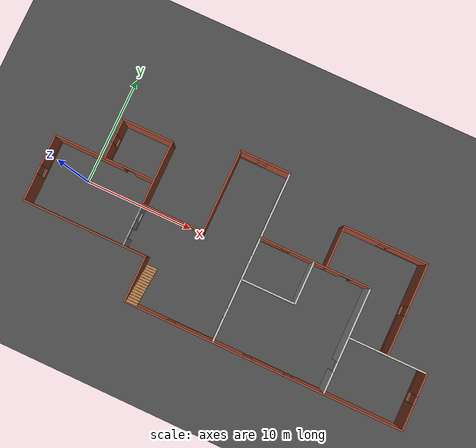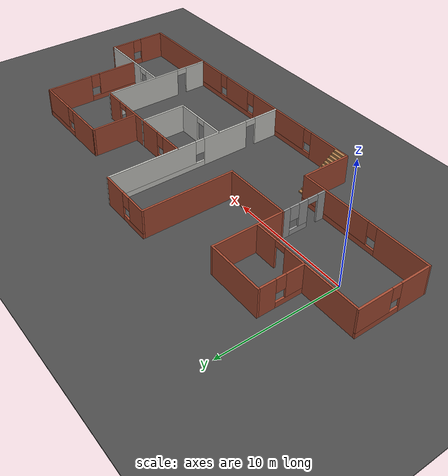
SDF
<sdf version="1.6">
 <world name="default">
  <light name="sun" type="directional">
   <pose>0 0 10 0 -0 0</pose>
   <diffuse>0.8 0.8 0.8 1</diffuse>
   <specular>0.2 0.2 0.2 1</specular>
   <attenuation>
    <range>1000</range>
    <constant>0.9</constant>
    <linear>0.01</linear>
    <quadratic>0.001</quadratic>
   </attenuation>
   <direction>-0.5 0.1 -0.9</direction>
  </light>
  <model name="ground_plane">
   <static>1</static>
   <link name="link">
    <collision name="collision">
     <geometry><plane><normal>0 0 1</normal><size>100 100</size></plane></geometry>
     <surface>
      <contact><collide_bitmask>65535</collide_bitmask></contact>
      <friction><ode><mu>100</mu><mu2>50</mu2></ode></friction>
     </surface>
    </collision>
    <visual name="visual">
     <cast_shadows>0</cast_shadows>
     <geometry><plane><normal>0 0 1</normal><size>100 100</size></plane></geometry>
     <material>
      <script><uri>file://media/materials/scripts/gazebo.material</uri><name>Gazebo/Grey</name></script>
     </material>
    </visual>
   </link>
  </model>
  <model name="asphalt_plane">
   <static>1</static>
   <link name="link">
    <collision name="collision"><geometry><box><size>200 200 0.1</size></box></geometry></collision>
    <visual name="visual">
     <cast_shadows>0</cast_shadows>
     <geometry><box><size>200 200 0.1</size></box></geometry>
     <material>
      <script>
       <uri>model://asphalt_plane/materials/scripts</uri>
       <uri>model://asphalt_plane/materials/textures</uri>
       <name>vrc/asphalt</name>
      </script>
     </material>
    </visual>
   </link>
  </model>
  <physics name="default_physics" default="0" type="ode">
   <ode>
    <solver>
     <type>quick</type>
     <iters>10</iters>
     <sor>1.3</sor>
     <use_dynamic_moi_rescaling>0</use_dynamic_moi_rescaling>
    </solver>
    <constraints>
     <cfm>0</cfm>
     <erp>0.2</erp>
     <contact_max_correcting_vel>100</contact_max_correcting_vel>
     <contact_surface_layer>0.001</contact_surface_layer>
    </constraints>
   </ode>
   <max_step_size>0.002</max_step_size>
   <real_time_factor>1</real_time_factor>
   <real_time_update_rate>500</real_time_update_rate>
  </physics>
  <gravity>0 0 -9.8066</gravity>
  <magnetic_field>6e-06 2.3e-05 -4.2e-05</magnetic_field>
  <atmosphere type="adiabatic"/>
  <scene><ambient>0.4 0.4 0.4 1</ambient><background>0.7 0.7 0.7 1</background><shadows>1</shadows></scene>
  <audio><device>default</device></audio>
  <spherical_coordinates>
   <surface_model>EARTH_WGS84</surface_model>
   <latitude_deg>0</latitude_deg>
   <longitude_deg>0</longitude_deg>
   <elevation>0</elevation>
   <heading_deg>0</heading_deg>
  </spherical_coordinates>
  <model name="Complex_House_2">
   <pose>14.725 -0.11 0 0 -0 0</pose>
   <link name="Stairs_1">
    <visual name="Stairs_1_Visual_0">
     <pose>-6.35818 -4.38972 0.083333 0 -0 0</pose>
     <geometry><box><size>1 0.233333 0.166667</size></box></geometry>
     <material>
      <script><uri>file://media/materials/scripts/gazebo.material</uri><name>Gazebo/Wood</name></script>
      <ambient>1 1 1 1</ambient>
     </material>
     <meta><layer>0</layer></meta>
    </visual>
    <collision name="Stairs_1_Collision_0">
     <geometry><box><size>1 0.233333 0.166667</size></box></geometry>
     <pose>-6.35818 -4.38972 0.083333 0 -0 0</pose>
    </collision>
    <visual name="Stairs_1_Visual_1">
     <pose>-6.35818 -4.62305 0.25 0 -0 0</pose>
     <geometry><box><size>1 0.233333 0.166667</size></box></geometry>
     <material>
      <script><uri>file://media/materials/scripts/gazebo.material</uri><name>Gazebo/Wood</name></script>
      <ambient>1 1 1 1</ambient>
     </material>
     <meta><layer>0</layer></meta>
    </visual>
    <collision name="Stairs_1_Collision_1">
     <geometry><box><size>1 0.233333 0.166667</size></box></geometry>
     <pose>-6.35818 -4.62305 0.25 0 -0 0</pose>
    </collision>
    <visual name="Stairs_1_Visual_2">
     <pose>-6.35818 -4.85638 0.416667 0 -0 0</pose>
     <geometry><box><size>1 0.233333 0.166667</size></box></geometry>
     <material>
      <script><uri>file://media/materials/scripts/gazebo.material</uri><name>Gazebo/Wood</name></script>
      <ambient>1 1 1 1</ambient>
     </material>
     <meta><layer>0</layer></meta>
    </visual>
    <collision name="Stairs_1_Collision_2">
     <geometry><box><size>1 0.233333 0.166667</size></box></geometry>
     <pose>-6.35818 -4.85638 0.416667 0 -0 0</pose>
    </collision>
    <visual name="Stairs_1_Visual_3">
     <pose>-6.35818 -5.08972 0.583333 0 -0 0</pose>
     <geometry><box><size>1 0.233333 0.166667</size></box></geometry>
     <material>
      <script><uri>file://media/materials/scripts/gazebo.material</uri><name>Gazebo/Wood</name></script>
      <ambient>1 1 1 1</ambient>
     </material>
     <meta><layer>0</layer></meta>
    </visual>
    <collision name="Stairs_1_Collision_3">
     <geometry><box><size>1 0.233333 0.166667</size></box></geometry>
     <pose>-6.35818 -5.08972 0.583333 0 -0 0</pose>
    </collision>
    <visual name="Stairs_1_Visual_4">
     <pose>-6.35818 -5.32305 0.75 0 -0 0</pose>
     <geometry><box><size>1 0.233333 0.166667</size></box></geometry>
     <material>
      <script><uri>file://media/materials/scripts/gazebo.material</uri><name>Gazebo/Wood</name></script>
      <ambient>1 1 1 1</ambient>
     </material>
     <meta><layer>0</layer></meta>
    </visual>
    <collision name="Stairs_1_Collision_4">
     <geometry><box><size>1 0.233333 0.166667</size></box></geometry>
     <pose>-6.35818 -5.32305 0.75 0 -0 0</pose>
    </collision>
    <visual name="Stairs_1_Visual_5">
     <pose>-6.35818 -5.55638 0.916667 0 -0 0</pose>
     <geometry><box><size>1 0.233333 0.166667</size></box></geometry>
     <material>
      <script><uri>file://media/materials/scripts/gazebo.material</uri><name>Gazebo/Wood</name></script>
      <ambient>1 1 1 1</ambient>
     </material>
     <meta><layer>0</layer></meta>
    </visual>
    <collision name="Stairs_1_Collision_5">
     <geometry><box><size>1 0.233333 0.166667</size></box></geometry>
     <pose>-6.35818 -5.55638 0.916667 0 -0 0</pose>
    </collision>
    <visual name="Stairs_1_Visual_6">
     <pose>-6.35818 -5.78972 1.08333 0 -0 0</pose>
     <geometry><box><size>1 0.233333 0.166667</size></box></geometry>
     <material>
      <script><uri>file://media/materials/scripts/gazebo.material</uri><name>Gazebo/Wood</name></script>
      <ambient>1 1 1 1</ambient>
     </material>
     <meta><layer>0</layer></meta>
    </visual>
    <collision name="Stairs_1_Collision_6">
     <geometry><box><size>1 0.233333 0.166667</size></box></geometry>
     <pose>-6.35818 -5.78972 1.08333 0 -0 0</pose>
    </collision>
    <visual name="Stairs_1_Visual_7">
     <pose>-6.35818 -6.02305 1.25 0 -0 0</pose>
     <geometry><box><size>1 0.233333 0.166667</size></box></geometry>
     <material>
      <script><uri>file://media/materials/scripts/gazebo.material</uri><name>Gazebo/Wood</name></script>
      <ambient>1 1 1 1</ambient>
     </material>
     <meta><layer>0</layer></meta>
    </visual>
    <collision name="Stairs_1_Collision_7">
     <geometry><box><size>1 0.233333 0.166667</size></box></geometry>
     <pose>-6.35818 -6.02305 1.25 0 -0 0</pose>
    </collision>
    <visual name="Stairs_1_Visual_8">
     <pose>-6.35818 -6.25638 1.41667 0 -0 0</pose>
     <geometry><box><size>1 0.233333 0.166667</size></box></geometry>
     <material>
      <script><uri>file://media/materials/scripts/gazebo.material</uri><name>Gazebo/Wood</name></script>
      <ambient>1 1 1 1</ambient>
     </material>
     <meta><layer>0</layer></meta>
    </visual>
    <collision name="Stairs_1_Collision_8">
     <geometry><box><size>1 0.233333 0.166667</size></box></geometry>
     <pose>-6.35818 -6.25638 1.41667 0 -0 0</pose>
    </collision>
    <visual name="Stairs_1_Visual_9">
     <pose>-6.35818 -6.48972 1.58333 0 -0 0</pose>
     <geometry><box><size>1 0.233333 0.166667</size></box></geometry>
     <material>
      <script><uri>file://media/materials/scripts/gazebo.material</uri><name>Gazebo/Wood</name></script>
      <ambient>1 1 1 1</ambient>
     </material>
     <meta><layer>0</layer></meta>
    </visual>
    <collision name="Stairs_1_Collision_9">
     <geometry><box><size>1 0.233333 0.166667</size></box></geometry>
     <pose>-6.35818 -6.48972 1.58333 0 -0 0</pose>
    </collision>
    <visual name="Stairs_1_Visual_10">
     <pose>-6.35818 -6.72305 1.75 0 -0 0</pose>
     <geometry><box><size>1 0.233333 0.166667</size></box></geometry>
     <material>
      <script><uri>file://media/materials/scripts/gazebo.material</uri><name>Gazebo/Wood</name></script>
      <ambient>1 1 1 1</ambient>
     </material>
     <meta><layer>0</layer></meta>
    </visual>
    <collision name="Stairs_1_Collision_10">
     <geometry><box><size>1 0.233333 0.166667</size></box></geometry>
     <pose>-6.35818 -6.72305 1.75 0 -0 0</pose>
    </collision>
    <visual name="Stairs_1_Visual_11">
     <pose>-6.35818 -6.95638 1.91667 0 -0 0</pose>
     <geometry><box><size>1 0.233333 0.166667</size></box></geometry>
     <material>
      <script><uri>file://media/materials/scripts/gazebo.material</uri><name>Gazebo/Wood</name></script>
      <ambient>1 1 1 1</ambient>
     </material>
     <meta><layer>0</layer></meta>
    </visual>
    <collision name="Stairs_1_Collision_11">
     <geometry><box><size>1 0.233333 0.166667</size></box></geometry>
     <pose>-6.35818 -6.95638 1.91667 0 -0 0</pose>
    </collision>
    <visual name="Stairs_1_Visual_12">
     <pose>-6.35818 -7.18972 2.08333 0 -0 0</pose>
     <geometry><box><size>1 0.233333 0.166667</size></box></geometry>
     <material>
      <script><uri>file://media/materials/scripts/gazebo.material</uri><name>Gazebo/Wood</name></script>
      <ambient>1 1 1 1</ambient>
     </material>
     <meta><layer>0</layer></meta>
    </visual>
    <collision name="Stairs_1_Collision_12">
     <geometry><box><size>1 0.233333 0.166667</size></box></geometry>
     <pose>-6.35818 -7.18972 2.08333 0 -0 0</pose>
    </collision>
    <visual name="Stairs_1_Visual_13">
     <pose>-6.35818 -7.42305 2.25 0 -0 0</pose>
     <geometry><box><size>1 0.233333 0.166667</size></box></geometry>
     <material>
      <script><uri>file://media/materials/scripts/gazebo.material</uri><name>Gazebo/Wood</name></script>
      <ambient>1 1 1 1</ambient>
     </material>
     <meta><layer>0</layer></meta>
    </visual>
    <collision name="Stairs_1_Collision_13">
     <geometry><box><size>1 0.233333 0.166667</size></box></geometry>
     <pose>-6.35818 -7.42305 2.25 0 -0 0</pose>
    </collision>
    <visual name="Stairs_1_Visual_14">
     <pose>-6.35818 -7.65638 2.41667 0 -0 0</pose>
     <geometry><box><size>1 0.233333 0.166667</size></box></geometry>
     <material>
      <script><uri>file://media/materials/scripts/gazebo.material</uri><name>Gazebo/Wood</name></script>
      <ambient>1 1 1 1</ambient>
     </material>
     <meta><layer>0</layer></meta>
    </visual>
    <collision name="Stairs_1_Collision_14">
     <geometry><box><size>1 0.233333 0.166667</size></box></geometry>
     <pose>-6.35818 -7.65638 2.41667 0 -0 0</pose>
    </collision>
   </link>
   <link name="Wall_1">
    <pose>-18.325 -0.65 0 0 -0 1.5708</pose>
    <visual name="Wall_1_Visual_0">
     <pose>-1.84207 0 1.25 0 -0 0</pose>
     <geometry><box><size>2.56586 0.15 2.5</size></box></geometry>
     <material>
      <script><uri>file://media/materials/scripts/gazebo.material</uri><name>Gazebo/Bricks</name></script>
      <ambient>1 1 1 1</ambient>
     </material>
     <meta><layer>0</layer></meta>
    </visual>
    <collision name="Wall_1_Collision_0">
     <geometry><box><size>2.56586 0.15 2.5</size></box></geometry>
     <pose>-1.84207 0 1.25 0 -0 0</pose>
    </collision>
    <visual name="Wall_1_Visual_1">
     <pose>1.28293 0 0.25 0 -0 0</pose>
     <geometry><box><size>3.68414 0.15 0.5</size></box></geometry>
     <material>
      <script><uri>file://media/materials/scripts/gazebo.material</uri><name>Gazebo/Bricks</name></script>
      <ambient>1 1 1 1</ambient>
     </material>
     <meta><layer>0</layer></meta>
    </visual>
    <collision name="Wall_1_Collision_1">
     <geometry><box><size>3.68414 0.15 0.5</size></box></geometry>
     <pose>1.28293 0 0.25 0 -0 0</pose>
    </collision>
    <visual name="Wall_1_Visual_2">
     <pose>1.68293 0 1.5 0 -0 0</pose>
     <geometry><box><size>2.88414 0.15 2</size></box></geometry>
     <material>
      <script><uri>file://media/materials/scripts/gazebo.material</uri><name>Gazebo/Bricks</name></script>
      <ambient>1 1 1 1</ambient>
     </material>
     <meta><layer>0</layer></meta>
    </visual>
    <collision name="Wall_1_Collision_2">
     <geometry><box><size>2.88414 0.15 2</size></box></geometry>
     <pose>1.68293 0 1.5 0 -0 0</pose>
    </collision>
    <visual name="Wall_1_Visual_3">
     <pose>-0.159136 0 1.9 0 -0 0</pose>
     <geometry><box><size>0.8 0.15 1.2</size></box></geometry>
     <material>
      <script><uri>file://media/materials/scripts/gazebo.material</uri><name>Gazebo/Bricks</name></script>
      <ambient>1 1 1 1</ambient>
     </material>
     <meta><layer>0</layer></meta>
    </visual>
    <collision name="Wall_1_Collision_3">
     <geometry><box><size>0.8 0.15 1.2</size></box></geometry>
     <pose>-0.159136 0 1.9 0 -0 0</pose>
    </collision>
   </link>
   <link name="Wall_10">
    <collision name="Wall_10_Collision">
     <geometry><box><size>7.75 0.15 2.5</size></box></geometry>
     <pose>0 0 1.25 0 -0 0</pose>
    </collision>
    <visual name="Wall_10_Visual">
     <pose>0 0 1.25 0 -0 0</pose>
     <geometry><box><size>7.75 0.15 2.5</size></box></geometry>
     <material>
      <script><uri>file://media/materials/scripts/gazebo.material</uri><name>Gazebo/Bricks</name></script>
      <ambient>1 1 1 1</ambient>
     </material>
     <meta><layer>0</layer></meta>
    </visual>
    <pose>-3.475 4 0 0 -0 -1.5708</pose>
   </link>
   <link name="Wall_11">
    <collision name="Wall_11_Collision">
     <geometry><box><size>5.75 0.15 2.5</size></box></geometry>
     <pose>0 0 1.25 0 -0 0</pose>
    </collision>
    <visual name="Wall_11_Visual">
     <pose>0 0 1.25 0 -0 0</pose>
     <geometry><box><size>5.75 0.15 2.5</size></box></geometry>
     <material>
      <script><uri>file://media/materials/scripts/gazebo.material</uri><name>Gazebo/Bricks</name></script>
      <ambient>1 1 1 1</ambient>
     </material>
     <meta><layer>0</layer></meta>
    </visual>
    <pose>-6.275 0.2 0 0 -0 3.14159</pose>
   </link>
   <link name="Wall_13">
    <pose>6.175 -7.8 0 0 -0 0</pose>
    <visual name="Wall_13_Visual_0">
     <pose>-3.68341 0 1.25 0 -0 0</pose>
     <geometry><box><size>2.88319 0.15 2.5</size></box></geometry>
     <material>
      <script><uri>file://media/materials/scripts/gazebo.material</uri><name>Gazebo/Bricks</name></script>
      <ambient>1 1 1 1</ambient>
     </material>
     <meta><layer>0</layer></meta>
    </visual>
    <collision name="Wall_13_Collision_0">
     <geometry><box><size>2.88319 0.15 2.5</size></box></geometry>
     <pose>-3.68341 0 1.25 0 -0 0</pose>
    </collision>
    <visual name="Wall_13_Visual_1">
     <pose>1.44159 0 0.25 0 -0 0</pose>
     <geometry><box><size>7.36681 0.15 0.5</size></box></geometry>
     <material>
      <script><uri>file://media/materials/scripts/gazebo.material</uri><name>Gazebo/Bricks</name></script>
      <ambient>1 1 1 1</ambient>
     </material>
     <meta><layer>0</layer></meta>
    </visual>
    <collision name="Wall_13_Collision_1">
     <geometry><box><size>7.36681 0.15 0.5</size></box></geometry>
     <pose>1.44159 0 0.25 0 -0 0</pose>
    </collision>
    <visual name="Wall_13_Visual_2">
     <pose>0.016109 0 1.5 0 -0 0</pose>
     <geometry><box><size>2.91584 0.15 2</size></box></geometry>
     <material>
      <script><uri>file://media/materials/scripts/gazebo.material</uri><name>Gazebo/Bricks</name></script>
      <ambient>1 1 1 1</ambient>
     </material>
     <meta><layer>0</layer></meta>
    </visual>
    <collision name="Wall_13_Collision_2">
     <geometry><box><size>2.91584 0.15 2</size></box></geometry>
     <pose>0.016109 0 1.5 0 -0 0</pose>
    </collision>
    <visual name="Wall_13_Visual_3">
     <pose>3.69951 0 1.5 0 -0 0</pose>
     <geometry><box><size>2.85097 0.15 2</size></box></geometry>
     <material>
      <script><uri>file://media/materials/scripts/gazebo.material</uri><name>Gazebo/Bricks</name></script>
      <ambient>1 1 1 1</ambient>
     </material>
     <meta><layer>0</layer></meta>
    </visual>
    <collision name="Wall_13_Collision_3">
     <geometry><box><size>2.85097 0.15 2</size></box></geometry>
     <pose>3.69951 0 1.5 0 -0 0</pose>
    </collision>
    <visual name="Wall_13_Visual_4">
     <pose>-1.84181 0 1.9 0 -0 0</pose>
     <geometry><box><size>0.8 0.15 1.2</size></box></geometry>
     <material>
      <script><uri>file://media/materials/scripts/gazebo.material</uri><name>Gazebo/Bricks</name></script>
      <ambient>1 1 1 1</ambient>
     </material>
     <meta><layer>0</layer></meta>
    </visual>
    <collision name="Wall_13_Collision_4">
     <geometry><box><size>0.8 0.15 1.2</size></box></geometry>
     <pose>-1.84181 0 1.9 0 -0 0</pose>
    </collision>
    <visual name="Wall_13_Visual_5">
     <pose>1.87403 0 1.9 0 -0 0</pose>
     <geometry><box><size>0.8 0.15 1.2</size></box></geometry>
     <material>
      <script><uri>file://media/materials/scripts/gazebo.material</uri><name>Gazebo/Bricks</name></script>
      <ambient>1 1 1 1</ambient>
     </material>
     <meta><layer>0</layer></meta>
    </visual>
    <collision name="Wall_13_Collision_5">
     <geometry><box><size>0.8 0.15 1.2</size></box></geometry>
     <pose>1.87403 0 1.9 0 -0 0</pose>
    </collision>
   </link>
   <link name="Wall_14">
    <pose>11.225 -3 0 0 -0 1.5708</pose>
    <visual name="Wall_14_Visual_0">
     <pose>-3.86039 0 1.25 0 -0 0</pose>
     <geometry><box><size>2.02921 0.15 2.5</size></box></geometry>
     <material>
      <script><uri>file://media/materials/scripts/gazebo.material</uri><name>Gazebo/CeilingTiled</name></script>
      <ambient>1 1 1 1</ambient>
     </material>
     <meta><layer>0</layer></meta>
    </visual>
    <collision name="Wall_14_Collision_0">
     <geometry><box><size>2.02921 0.15 2.5</size></box></geometry>
     <pose>-3.86039 0 1.25 0 -0 0</pose>
    </collision>
    <visual name="Wall_14_Visual_1">
     <pose>1.46461 0 1.25 0 -0 0</pose>
     <geometry><box><size>6.82079 0.15 2.5</size></box></geometry>
     <material>
      <script><uri>file://media/materials/scripts/gazebo.material</uri><name>Gazebo/CeilingTiled</name></script>
      <ambient>1 1 1 1</ambient>
     </material>
     <meta><layer>0</layer></meta>
    </visual>
    <collision name="Wall_14_Collision_1">
     <geometry><box><size>6.82079 0.15 2.5</size></box></geometry>
     <pose>1.46461 0 1.25 0 -0 0</pose>
    </collision>
    <visual name="Wall_14_Visual_2">
     <pose>-2.39579 0 2.25 0 -0 0</pose>
     <geometry><box><size>0.9 0.15 0.5</size></box></geometry>
     <material>
      <script><uri>file://media/materials/scripts/gazebo.material</uri><name>Gazebo/CeilingTiled</name></script>
      <ambient>1 1 1 1</ambient>
     </material>
     <meta><layer>0</layer></meta>
    </visual>
    <collision name="Wall_14_Collision_2">
     <geometry><box><size>0.9 0.15 0.5</size></box></geometry>
     <pose>-2.39579 0 2.25 0 -0 0</pose>
    </collision>
   </link>
   <link name="Wall_17">
    <pose>6.175 1.8 0 0 -0 3.14159</pose>
    <visual name="Wall_17_Visual_0">
     <pose>-4.24504 0 1.25 0 -0 0</pose>
     <geometry><box><size>1.75992 0.15 2.5</size></box></geometry>
     <material>
      <script><uri>file://media/materials/scripts/gazebo.material</uri><name>Gazebo/Bricks</name></script>
      <ambient>1 1 1 1</ambient>
     </material>
     <meta><layer>0</layer></meta>
    </visual>
    <collision name="Wall_17_Collision_0">
     <geometry><box><size>1.75992 0.15 2.5</size></box></geometry>
     <pose>-4.24504 0 1.25 0 -0 0</pose>
    </collision>
    <visual name="Wall_17_Visual_1">
     <pose>-0.10652 0 1.25 0 -0 0</pose>
     <geometry><box><size>4.71712 0.15 2.5</size></box></geometry>
     <material>
      <script><uri>file://media/materials/scripts/gazebo.material</uri><name>Gazebo/Bricks</name></script>
      <ambient>1 1 1 1</ambient>
     </material>
     <meta><layer>0</layer></meta>
    </visual>
    <collision name="Wall_17_Collision_1">
     <geometry><box><size>4.71712 0.15 2.5</size></box></geometry>
     <pose>-0.10652 0 1.25 0 -0 0</pose>
    </collision>
    <visual name="Wall_17_Visual_2">
     <pose>3.68852 0 0.25 0 -0 0</pose>
     <geometry><box><size>2.87296 0.15 0.5</size></box></geometry>
     <material>
      <script><uri>file://media/materials/scripts/gazebo.material</uri><name>Gazebo/Bricks</name></script>
      <ambient>1 1 1 1</ambient>
     </material>
     <meta><layer>0</layer></meta>
    </visual>
    <collision name="Wall_17_Collision_2">
     <geometry><box><size>2.87296 0.15 0.5</size></box></geometry>
     <pose>3.68852 0 0.25 0 -0 0</pose>
    </collision>
    <visual name="Wall_17_Visual_3">
     <pose>4.08852 0 1.5 0 -0 0</pose>
     <geometry><box><size>2.07296 0.15 2</size></box></geometry>
     <material>
      <script><uri>file://media/materials/scripts/gazebo.material</uri><name>Gazebo/Bricks</name></script>
      <ambient>1 1 1 1</ambient>
     </material>
     <meta><layer>0</layer></meta>
    </visual>
    <collision name="Wall_17_Collision_3">
     <geometry><box><size>2.07296 0.15 2</size></box></geometry>
     <pose>4.08852 0 1.5 0 -0 0</pose>
    </collision>
    <visual name="Wall_17_Visual_4">
     <pose>2.65204 0 1.9 0 -0 0</pose>
     <geometry><box><size>0.8 0.15 1.2</size></box></geometry>
     <material>
      <script><uri>file://media/materials/scripts/gazebo.material</uri><name>Gazebo/Bricks</name></script>
      <ambient>1 1 1 1</ambient>
     </material>
     <meta><layer>0</layer></meta>
    </visual>
    <collision name="Wall_17_Collision_4">
     <geometry><box><size>0.8 0.15 1.2</size></box></geometry>
     <pose>2.65204 0 1.9 0 -0 0</pose>
    </collision>
    <visual name="Wall_17_Visual_5">
     <pose>-2.91508 0 2.25 0 -0 0</pose>
     <geometry><box><size>0.9 0.15 0.5</size></box></geometry>
     <material>
      <script><uri>file://media/materials/scripts/gazebo.material</uri><name>Gazebo/Bricks</name></script>
      <ambient>1 1 1 1</ambient>
     </material>
     <meta><layer>0</layer></meta>
    </visual>
    <collision name="Wall_17_Collision_5">
     <geometry><box><size>0.9 0.15 0.5</size></box></geometry>
     <pose>-2.91508 0 2.25 0 -0 0</pose>
    </collision>
   </link>
   <link name="Wall_2">
    <pose>-13.775 2.4 0 0 -0 0</pose>
    <visual name="Wall_2_Visual_0">
     <pose>-1.37417 0 1.25 0 -0 0</pose>
     <geometry><box><size>6.50165 0.15 2.5</size></box></geometry>
     <material>
      <script><uri>file://media/materials/scripts/gazebo.material</uri><name>Gazebo/Bricks</name></script>
      <ambient>1 1 1 1</ambient>
     </material>
     <meta><layer>0</layer></meta>
    </visual>
    <collision name="Wall_2_Collision_0">
     <geometry><box><size>6.50165 0.15 2.5</size></box></geometry>
     <pose>-1.37417 0 1.25 0 -0 0</pose>
    </collision>
    <visual name="Wall_2_Visual_1">
     <pose>3.70083 0 1.25 0 -0 0</pose>
     <geometry><box><size>1.84835 0.15 2.5</size></box></geometry>
     <material>
      <script><uri>file://media/materials/scripts/gazebo.material</uri><name>Gazebo/Bricks</name></script>
      <ambient>1 1 1 1</ambient>
     </material>
     <meta><layer>0</layer></meta>
    </visual>
    <collision name="Wall_2_Collision_1">
     <geometry><box><size>1.84835 0.15 2.5</size></box></geometry>
     <pose>3.70083 0 1.25 0 -0 0</pose>
    </collision>
    <visual name="Wall_2_Visual_2">
     <pose>2.32665 0 2.25 0 -0 0</pose>
     <geometry><box><size>0.9 0.15 0.5</size></box></geometry>
     <material>
      <script><uri>file://media/materials/scripts/gazebo.material</uri><name>Gazebo/Bricks</name></script>
      <ambient>1 1 1 1</ambient>
     </material>
     <meta><layer>0</layer></meta>
    </visual>
    <collision name="Wall_2_Collision_2">
     <geometry><box><size>0.9 0.15 0.5</size></box></geometry>
     <pose>2.32665 0 2.25 0 -0 0</pose>
    </collision>
   </link>
   <link name="Wall_20">
    <pose>-9.075 -1.725 0 0 -0 -1.5708</pose>
    <visual name="Wall_20_Visual_0">
     <pose>-1.64114 0 1.25 0 -0 0</pose>
     <geometry><box><size>0.717716 0.15 2.5</size></box></geometry>
     <material>
      <script><uri>file://media/materials/scripts/gazebo.material</uri><name>Gazebo/Grey</name></script>
      <ambient>1 1 1 1</ambient>
     </material>
     <meta><layer>0</layer></meta>
    </visual>
    <collision name="Wall_20_Collision_0">
     <geometry><box><size>0.717716 0.15 2.5</size></box></geometry>
     <pose>-1.64114 0 1.25 0 -0 0</pose>
    </collision>
    <visual name="Wall_20_Visual_1">
     <pose>1.60473 0 1.25 0 -0 0</pose>
     <geometry><box><size>0.790546 0.15 2.5</size></box></geometry>
     <material>
      <script><uri>file://media/materials/scripts/gazebo.material</uri><name>Gazebo/Grey</name></script>
      <ambient>1 1 1 1</ambient>
     </material>
     <meta><layer>0</layer></meta>
    </visual>
    <collision name="Wall_20_Collision_1">
     <geometry><box><size>0.790546 0.15 2.5</size></box></geometry>
     <pose>1.60473 0 1.25 0 -0 0</pose>
    </collision>
    <visual name="Wall_20_Visual_2">
     <pose>-0.486415 0 0.25 0 -0 0</pose>
     <geometry><box><size>1.59174 0.15 0.5</size></box></geometry>
     <material>
      <script><uri>file://media/materials/scripts/gazebo.material</uri><name>Gazebo/Grey</name></script>
      <ambient>1 1 1 1</ambient>
     </material>
     <meta><layer>0</layer></meta>
    </visual>
    <collision name="Wall_20_Collision_2">
     <geometry><box><size>1.59174 0.15 0.5</size></box></geometry>
     <pose>-0.486415 0 0.25 0 -0 0</pose>
    </collision>
    <visual name="Wall_20_Visual_3">
     <pose>-0.086415 0 1.5 0 -0 0</pose>
     <geometry><box><size>0.791738 0.15 2</size></box></geometry>
     <material>
      <script><uri>file://media/materials/scripts/gazebo.material</uri><name>Gazebo/Grey</name></script>
      <ambient>1 1 1 1</ambient>
     </material>
     <meta><layer>0</layer></meta>
    </visual>
    <collision name="Wall_20_Collision_3">
     <geometry><box><size>0.791738 0.15 2</size></box></geometry>
     <pose>-0.086415 0 1.5 0 -0 0</pose>
    </collision>
    <visual name="Wall_20_Visual_4">
     <pose>-0.882284 0 1.9 0 -0 0</pose>
     <geometry><box><size>0.8 0.15 1.2</size></box></geometry>
     <material>
      <script><uri>file://media/materials/scripts/gazebo.material</uri><name>Gazebo/Grey</name></script>
      <ambient>1 1 1 1</ambient>
     </material>
     <meta><layer>0</layer></meta>
    </visual>
    <collision name="Wall_20_Collision_4">
     <geometry><box><size>0.8 0.15 1.2</size></box></geometry>
     <pose>-0.882284 0 1.9 0 -0 0</pose>
    </collision>
    <visual name="Wall_20_Visual_5">
     <pose>0.759454 0 2.25 0 -0 0</pose>
     <geometry><box><size>0.9 0.15 0.5</size></box></geometry>
     <material>
      <script><uri>file://media/materials/scripts/gazebo.material</uri><name>Gazebo/Grey</name></script>
      <ambient>1 1 1 1</ambient>
     </material>
     <meta><layer>0</layer></meta>
    </visual>
    <collision name="Wall_20_Collision_5">
     <geometry><box><size>0.9 0.15 0.5</size></box></geometry>
     <pose>0.759454 0 2.25 0 -0 0</pose>
    </collision>
   </link>
   <link name="Wall_22">
    <collision name="Wall_22_Collision">
     <geometry><box><size>6 0.15 2.5</size></box></geometry>
     <pose>0 0 1.25 0 -0 0</pose>
    </collision>
    <visual name="Wall_22_Visual">
     <pose>0 0 1.25 0 -0 0</pose>
     <geometry><box><size>6 0.15 2.5</size></box></geometry>
     <material>
      <script><uri>file://media/materials/scripts/gazebo.material</uri><name>Gazebo/Bricks</name></script>
      <ambient>1 1 1 1</ambient>
     </material>
     <meta><layer>0</layer></meta>
    </visual>
    <pose>-9.075 3.125 0 0 -0 1.5708</pose>
   </link>
   <link name="Wall_23">
    <collision name="Wall_23_Collision">
     <geometry><box><size>4.75 0.15 2.5</size></box></geometry>
     <pose>0 0 1.25 0 -0 0</pose>
    </collision>
    <visual name="Wall_23_Visual">
     <pose>0 0 1.25 0 -0 0</pose>
     <geometry><box><size>4.75 0.15 2.5</size></box></geometry>
     <material>
      <script><uri>file://media/materials/scripts/gazebo.material</uri><name>Gazebo/Bricks</name></script>
      <ambient>1 1 1 1</ambient>
     </material>
     <meta><layer>0</layer></meta>
    </visual>
    <pose>-11.375 6.05 0 0 -0 3.14159</pose>
   </link>
   <link name="Wall_24">
    <pose>-13.675 4.25 0 0 -0 -1.5708</pose>
    <visual name="Wall_24_Visual_0">
     <pose>-1.15539 0 1.25 0 -0 0</pose>
     <geometry><box><size>1.43922 0.15 2.5</size></box></geometry>
     <material>
      <script><uri>file://media/materials/scripts/gazebo.material</uri><name>Gazebo/Bricks</name></script>
      <ambient>1 1 1 1</ambient>
     </material>
     <meta><layer>0</layer></meta>
    </visual>
    <collision name="Wall_24_Collision_0">
     <geometry><box><size>1.43922 0.15 2.5</size></box></geometry>
     <pose>-1.15539 0 1.25 0 -0 0</pose>
    </collision>
    <visual name="Wall_24_Visual_1">
     <pose>0.719611 0 0.25 0 -0 0</pose>
     <geometry><box><size>2.31078 0.15 0.5</size></box></geometry>
     <material>
      <script><uri>file://media/materials/scripts/gazebo.material</uri><name>Gazebo/Bricks</name></script>
      <ambient>1 1 1 1</ambient>
     </material>
     <meta><layer>0</layer></meta>
    </visual>
    <collision name="Wall_24_Collision_1">
     <geometry><box><size>2.31078 0.15 0.5</size></box></geometry>
     <pose>0.719611 0 0.25 0 -0 0</pose>
    </collision>
    <visual name="Wall_24_Visual_2">
     <pose>1.11961 0 1.5 0 -0 0</pose>
     <geometry><box><size>1.51078 0.15 2</size></box></geometry>
     <material>
      <script><uri>file://media/materials/scripts/gazebo.material</uri><name>Gazebo/Bricks</name></script>
      <ambient>1 1 1 1</ambient>
     </material>
     <meta><layer>0</layer></meta>
    </visual>
    <collision name="Wall_24_Collision_2">
     <geometry><box><size>1.51078 0.15 2</size></box></geometry>
     <pose>1.11961 0 1.5 0 -0 0</pose>
    </collision>
    <visual name="Wall_24_Visual_3">
     <pose>-0.035777 0 1.9 0 -0 0</pose>
     <geometry><box><size>0.8 0.15 1.2</size></box></geometry>
     <material>
      <script><uri>file://media/materials/scripts/gazebo.material</uri><name>Gazebo/Bricks</name></script>
      <ambient>1 1 1 1</ambient>
     </material>
     <meta><layer>0</layer></meta>
    </visual>
    <collision name="Wall_24_Collision_3">
     <geometry><box><size>0.8 0.15 1.2</size></box></geometry>
     <pose>-0.035777 0 1.9 0 -0 0</pose>
    </collision>
   </link>
   <link name="Wall_27">
    <collision name="Wall_27_Collision">
     <geometry><box><size>4 0.15 2.5</size></box></geometry>
     <pose>0 0 1.25 0 -0 0</pose>
    </collision>
    <visual name="Wall_27_Visual">
     <pose>0 0 1.25 0 -0 0</pose>
     <geometry><box><size>4 0.15 2.5</size></box></geometry>
     <material>
      <script><uri>file://media/materials/scripts/gazebo.material</uri><name>Gazebo/CeilingTiled</name></script>
      <ambient>1 1 1 1</ambient>
     </material>
     <meta><layer>0</layer></meta>
    </visual>
    <pose>6.04193 -0.120487 0 0 -0 -1.5708</pose>
   </link>
   <link name="Wall_28">
    <pose>3.61693 -2.04549 0 0 -0 3.14159</pose>
    <visual name="Wall_28_Visual_0">
     <pose>-1.41512 0 1.25 0 -0 0</pose>
     <geometry><box><size>2.16976 0.15 2.5</size></box></geometry>
     <material>
      <script><uri>file://media/materials/scripts/gazebo.material</uri><name>Gazebo/CeilingTiled</name></script>
      <ambient>1 1 1 1</ambient>
     </material>
     <meta><layer>0</layer></meta>
    </visual>
    <collision name="Wall_28_Collision_0">
     <geometry><box><size>2.16976 0.15 2.5</size></box></geometry>
     <pose>-1.41512 0 1.25 0 -0 0</pose>
    </collision>
    <visual name="Wall_28_Visual_1">
     <pose>1.53488 0 1.25 0 -0 0</pose>
     <geometry><box><size>1.93024 0.15 2.5</size></box></geometry>
     <material>
      <script><uri>file://media/materials/scripts/gazebo.material</uri><name>Gazebo/CeilingTiled</name></script>
      <ambient>1 1 1 1</ambient>
     </material>
     <meta><layer>0</layer></meta>
    </visual>
    <collision name="Wall_28_Collision_1">
     <geometry><box><size>1.93024 0.15 2.5</size></box></geometry>
     <pose>1.53488 0 1.25 0 -0 0</pose>
    </collision>
    <visual name="Wall_28_Visual_2">
     <pose>0.119764 0 2.25 0 -0 0</pose>
     <geometry><box><size>0.9 0.15 0.5</size></box></geometry>
     <material>
      <script><uri>file://media/materials/scripts/gazebo.material</uri><name>Gazebo/CeilingTiled</name></script>
      <ambient>1 1 1 1</ambient>
     </material>
     <meta><layer>0</layer></meta>
    </visual>
    <collision name="Wall_28_Collision_2">
     <geometry><box><size>0.9 0.15 0.5</size></box></geometry>
     <pose>0.119764 0 2.25 0 -0 0</pose>
    </collision>
   </link>
   <link name="Wall_30">
    <collision name="Wall_30_Collision">
     <geometry><box><size>7.25 0.15 2.5</size></box></geometry>
     <pose>0 0 1.25 0 -0 0</pose>
    </collision>
    <visual name="Wall_30_Visual">
     <pose>0 0 1.25 0 -0 0</pose>
     <geometry><box><size>7.25 0.15 2.5</size></box></geometry>
     <material>
      <script><uri>file://media/materials/scripts/gazebo.material</uri><name>Gazebo/Bricks</name></script>
      <ambient>1 1 1 1</ambient>
     </material>
     <meta><layer>0</layer></meta>
    </visual>
    <pose>14.775 -7.8 0 0 -0 0</pose>
   </link>
   <link name="Wall_31">
    <pose>18.325 -5.25 0 0 -0 1.5708</pose>
    <visual name="Wall_31_Visual_0">
     <pose>-1.45437 0 1.25 0 -0 0</pose>
     <geometry><box><size>2.34125 0.15 2.5</size></box></geometry>
     <material>
      <script><uri>file://media/materials/scripts/gazebo.material</uri><name>Gazebo/Bricks</name></script>
      <ambient>1 1 1 1</ambient>
     </material>
     <meta><layer>0</layer></meta>
    </visual>
    <collision name="Wall_31_Collision_0">
     <geometry><box><size>2.34125 0.15 2.5</size></box></geometry>
     <pose>-1.45437 0 1.25 0 -0 0</pose>
    </collision>
    <visual name="Wall_31_Visual_1">
     <pose>1.17063 0 0.25 0 -0 0</pose>
     <geometry><box><size>2.90875 0.15 0.5</size></box></geometry>
     <material>
      <script><uri>file://media/materials/scripts/gazebo.material</uri><name>Gazebo/Bricks</name></script>
      <ambient>1 1 1 1</ambient>
     </material>
     <meta><layer>0</layer></meta>
    </visual>
    <collision name="Wall_31_Collision_1">
     <geometry><box><size>2.90875 0.15 0.5</size></box></geometry>
     <pose>1.17063 0 0.25 0 -0 0</pose>
    </collision>
    <visual name="Wall_31_Visual_2">
     <pose>1.57063 0 1.5 0 -0 0</pose>
     <geometry><box><size>2.10874 0.15 2</size></box></geometry>
     <material>
      <script><uri>file://media/materials/scripts/gazebo.material</uri><name>Gazebo/Bricks</name></script>
      <ambient>1 1 1 1</ambient>
     </material>
     <meta><layer>0</layer></meta>
    </visual>
    <collision name="Wall_31_Collision_2">
     <geometry><box><size>2.10874 0.15 2</size></box></geometry>
     <pose>1.57063 0 1.5 0 -0 0</pose>
    </collision>
    <visual name="Wall_31_Visual_3">
     <pose>0.116255 0 1.9 0 -0 0</pose>
     <geometry><box><size>0.8 0.15 1.2</size></box></geometry>
     <material>
      <script><uri>file://media/materials/scripts/gazebo.material</uri><name>Gazebo/Bricks</name></script>
      <ambient>1 1 1 1</ambient>
     </material>
     <meta><layer>0</layer></meta>
    </visual>
    <collision name="Wall_31_Collision_3">
     <geometry><box><size>0.8 0.15 1.2</size></box></geometry>
     <pose>0.116255 0 1.9 0 -0 0</pose>
    </collision>
   </link>
   <link name="Wall_32">
    <pose>14.775 -2.7 0 0 -0 3.14159</pose>
    <visual name="Wall_32_Visual_0">
     <pose>-1.2445 0 1.25 0 -0 0</pose>
     <geometry><box><size>4.76101 0.15 2.5</size></box></geometry>
     <material>
      <script><uri>file://media/materials/scripts/gazebo.material</uri><name>Gazebo/CeilingTiled</name></script>
      <ambient>1 1 1 1</ambient>
     </material>
     <meta><layer>0</layer></meta>
    </visual>
    <collision name="Wall_32_Collision_0">
     <geometry><box><size>4.76101 0.15 2.5</size></box></geometry>
     <pose>-1.2445 0 1.25 0 -0 0</pose>
    </collision>
    <visual name="Wall_32_Visual_1">
     <pose>2.8305 0 1.25 0 -0 0</pose>
     <geometry><box><size>1.58899 0.15 2.5</size></box></geometry>
     <material>
      <script><uri>file://media/materials/scripts/gazebo.material</uri><name>Gazebo/CeilingTiled</name></script>
      <ambient>1 1 1 1</ambient>
     </material>
     <meta><layer>0</layer></meta>
    </visual>
    <collision name="Wall_32_Collision_1">
     <geometry><box><size>1.58899 0.15 2.5</size></box></geometry>
     <pose>2.8305 0 1.25 0 -0 0</pose>
    </collision>
    <visual name="Wall_32_Visual_2">
     <pose>1.58601 0 2.25 0 -0 0</pose>
     <geometry><box><size>0.9 0.15 0.5</size></box></geometry>
     <material>
      <script><uri>file://media/materials/scripts/gazebo.material</uri><name>Gazebo/CeilingTiled</name></script>
      <ambient>1 1 1 1</ambient>
     </material>
     <meta><layer>0</layer></meta>
    </visual>
    <collision name="Wall_32_Collision_2">
     <geometry><box><size>0.9 0.15 0.5</size></box></geometry>
     <pose>1.58601 0 2.25 0 -0 0</pose>
    </collision>
   </link>
   <link name="Wall_34">
    <collision name="Wall_34_Collision">
     <geometry><box><size>4 0.15 2.5</size></box></geometry>
     <pose>0 0 1.25 0 -0 0</pose>
    </collision>
    <visual name="Wall_34_Visual">
     <pose>0 0 1.25 0 -0 0</pose>
     <geometry><box><size>4 0.15 2.5</size></box></geometry>
     <material>
      <script><uri>file://media/materials/scripts/gazebo.material</uri><name>Gazebo/Bricks</name></script>
      <ambient>1 1 1 1</ambient>
     </material>
     <meta><layer>0</layer></meta>
    </visual>
    <pose>7.15023 3.70931 0 0 -0 1.5708</pose>
   </link>
   <link name="Wall_35">
    <pose>10.9502 5.63431 0 0 -0 0</pose>
    <visual name="Wall_35_Visual_0">
     <pose>-2.15445 0 1.25 0 -0 0</pose>
     <geometry><box><size>3.4411 0.15 2.5</size></box></geometry>
     <material>
      <script><uri>file://media/materials/scripts/gazebo.material</uri><name>Gazebo/Bricks</name></script>
      <ambient>1 1 1 1</ambient>
     </material>
     <meta><layer>0</layer></meta>
    </visual>
    <collision name="Wall_35_Collision_0">
     <geometry><box><size>3.4411 0.15 2.5</size></box></geometry>
     <pose>-2.15445 0 1.25 0 -0 0</pose>
    </collision>
    <visual name="Wall_35_Visual_1">
     <pose>1.72055 0 0.25 0 -0 0</pose>
     <geometry><box><size>4.3089 0.15 0.5</size></box></geometry>
     <material>
      <script><uri>file://media/materials/scripts/gazebo.material</uri><name>Gazebo/Bricks</name></script>
      <ambient>1 1 1 1</ambient>
     </material>
     <meta><layer>0</layer></meta>
    </visual>
    <collision name="Wall_35_Collision_1">
     <geometry><box><size>4.3089 0.15 0.5</size></box></geometry>
     <pose>1.72055 0 0.25 0 -0 0</pose>
    </collision>
    <visual name="Wall_35_Visual_2">
     <pose>2.12055 0 1.5 0 -0 0</pose>
     <geometry><box><size>3.5089 0.15 2</size></box></geometry>
     <material>
      <script><uri>file://media/materials/scripts/gazebo.material</uri><name>Gazebo/Bricks</name></script>
      <ambient>1 1 1 1</ambient>
     </material>
     <meta><layer>0</layer></meta>
    </visual>
    <collision name="Wall_35_Collision_2">
     <geometry><box><size>3.5089 0.15 2</size></box></geometry>
     <pose>2.12055 0 1.5 0 -0 0</pose>
    </collision>
    <visual name="Wall_35_Visual_3">
     <pose>-0.033897 0 1.9 0 -0 0</pose>
     <geometry><box><size>0.8 0.15 1.2</size></box></geometry>
     <material>
      <script><uri>file://media/materials/scripts/gazebo.material</uri><name>Gazebo/Bricks</name></script>
      <ambient>1 1 1 1</ambient>
     </material>
     <meta><layer>0</layer></meta>
    </visual>
    <collision name="Wall_35_Collision_3">
     <geometry><box><size>0.8 0.15 1.2</size></box></geometry>
     <pose>-0.033897 0 1.9 0 -0 0</pose>
    </collision>
   </link>
   <link name="Wall_36">
    <pose>14.7502 1.45931 0 0 -0 -1.5708</pose>
    <visual name="Wall_36_Visual_0">
     <pose>-2.2455 0 1.25 0 -0 0</pose>
     <geometry><box><size>4.00901 0.15 2.5</size></box></geometry>
     <material>
      <script><uri>file://media/materials/scripts/gazebo.material</uri><name>Gazebo/Bricks</name></script>
      <ambient>1 1 1 1</ambient>
     </material>
     <meta><layer>0</layer></meta>
    </visual>
    <collision name="Wall_36_Collision_0">
     <geometry><box><size>4.00901 0.15 2.5</size></box></geometry>
     <pose>-2.2455 0 1.25 0 -0 0</pose>
    </collision>
    <visual name="Wall_36_Visual_1">
     <pose>2.0045 0 0.25 0 -0 0</pose>
     <geometry><box><size>4.49099 0.15 0.5</size></box></geometry>
     <material>
      <script><uri>file://media/materials/scripts/gazebo.material</uri><name>Gazebo/Bricks</name></script>
      <ambient>1 1 1 1</ambient>
     </material>
     <meta><layer>0</layer></meta>
    </visual>
    <collision name="Wall_36_Collision_1">
     <geometry><box><size>4.49099 0.15 0.5</size></box></geometry>
     <pose>2.0045 0 0.25 0 -0 0</pose>
    </collision>
    <visual name="Wall_36_Visual_2">
     <pose>2.4045 0 1.5 0 -0 0</pose>
     <geometry><box><size>3.69099 0.15 2</size></box></geometry>
     <material>
      <script><uri>file://media/materials/scripts/gazebo.material</uri><name>Gazebo/Bricks</name></script>
      <ambient>1 1 1 1</ambient>
     </material>
     <meta><layer>0</layer></meta>
    </visual>
    <collision name="Wall_36_Collision_2">
     <geometry><box><size>3.69099 0.15 2</size></box></geometry>
     <pose>2.4045 0 1.5 0 -0 0</pose>
    </collision>
    <visual name="Wall_36_Visual_3">
     <pose>0.159006 0 1.9 0 -0 0</pose>
     <geometry><box><size>0.8 0.15 1.2</size></box></geometry>
     <material>
      <script><uri>file://media/materials/scripts/gazebo.material</uri><name>Gazebo/Bricks</name></script>
      <ambient>1 1 1 1</ambient>
     </material>
     <meta><layer>0</layer></meta>
    </visual>
    <collision name="Wall_36_Collision_3">
     <geometry><box><size>0.8 0.15 1.2</size></box></geometry>
     <pose>0.159006 0 1.9 0 -0 0</pose>
    </collision>
   </link>
   <link name="Wall_5">
    <pose>-12.65 -3.7 0 0 -0 0</pose>
    <visual name="Wall_5_Visual_0">
     <pose>-3.54739 0 1.25 0 -0 0</pose>
     <geometry><box><size>4.40523 0.15 2.5</size></box></geometry>
     <material>
      <script><uri>file://media/materials/scripts/gazebo.material</uri><name>Gazebo/Bricks</name></script>
      <ambient>1 1 1 1</ambient>
     </material>
     <meta><layer>0</layer></meta>
    </visual>
    <collision name="Wall_5_Collision_0">
     <geometry><box><size>4.40523 0.15 2.5</size></box></geometry>
     <pose>-3.54739 0 1.25 0 -0 0</pose>
    </collision>
    <visual name="Wall_5_Visual_1">
     <pose>2.20261 0 0.25 0 -0 0</pose>
     <geometry><box><size>7.09477 0.15 0.5</size></box></geometry>
     <material>
      <script><uri>file://media/materials/scripts/gazebo.material</uri><name>Gazebo/Bricks</name></script>
      <ambient>1 1 1 1</ambient>
     </material>
     <meta><layer>0</layer></meta>
    </visual>
    <collision name="Wall_5_Collision_1">
     <geometry><box><size>7.09477 0.15 0.5</size></box></geometry>
     <pose>2.20261 0 0.25 0 -0 0</pose>
    </collision>
    <visual name="Wall_5_Visual_2">
     <pose>2.60261 0 1.5 0 -0 0</pose>
     <geometry><box><size>6.29477 0.15 2</size></box></geometry>
     <material>
      <script><uri>file://media/materials/scripts/gazebo.material</uri><name>Gazebo/Bricks</name></script>
      <ambient>1 1 1 1</ambient>
     </material>
     <meta><layer>0</layer></meta>
    </visual>
    <collision name="Wall_5_Collision_2">
     <geometry><box><size>6.29477 0.15 2</size></box></geometry>
     <pose>2.60261 0 1.5 0 -0 0</pose>
    </collision>
    <visual name="Wall_5_Visual_3">
     <pose>-0.944772 0 1.9 0 -0 0</pose>
     <geometry><box><size>0.8 0.15 1.2</size></box></geometry>
     <material>
      <script><uri>file://media/materials/scripts/gazebo.material</uri><name>Gazebo/Bricks</name></script>
      <ambient>1 1 1 1</ambient>
     </material>
     <meta><layer>0</layer></meta>
    </visual>
    <collision name="Wall_5_Collision_3">
     <geometry><box><size>0.8 0.15 1.2</size></box></geometry>
     <pose>-0.944772 0 1.9 0 -0 0</pose>
    </collision>
   </link>
   <link name="Wall_6">
    <collision name="Wall_6_Collision">
     <geometry><box><size>4.25 0.15 2.5</size></box></geometry>
     <pose>0 0 1.25 0 -0 0</pose>
    </collision>
    <visual name="Wall_6_Visual">
     <pose>0 0 1.25 0 -0 0</pose>
     <geometry><box><size>4.25 0.15 2.5</size></box></geometry>
     <material>
      <script><uri>file://media/materials/scripts/gazebo.material</uri><name>Gazebo/Bricks</name></script>
      <ambient>1 1 1 1</ambient>
     </material>
     <meta><layer>0</layer></meta>
    </visual>
    <pose>-6.975 -5.75 0 0 -0 -1.5708</pose>
   </link>
   <link name="Wall_7">
    <pose>-2.925 -7.8 0 0 -0 0</pose>
    <visual name="Wall_7_Visual_0">
     <pose>-2.17349 0 1.25 0 -0 0</pose>
     <geometry><box><size>3.90303 0.15 2.5</size></box></geometry>
     <material>
      <script><uri>file://media/materials/scripts/gazebo.material</uri><name>Gazebo/Bricks</name></script>
      <ambient>1 1 1 1</ambient>
     </material>
     <meta><layer>0</layer></meta>
    </visual>
    <collision name="Wall_7_Collision_0">
     <geometry><box><size>3.90303 0.15 2.5</size></box></geometry>
     <pose>-2.17349 0 1.25 0 -0 0</pose>
    </collision>
    <visual name="Wall_7_Visual_1">
     <pose>1.95151 0 0.25 0 -0 0</pose>
     <geometry><box><size>4.34697 0.15 0.5</size></box></geometry>
     <material>
      <script><uri>file://media/materials/scripts/gazebo.material</uri><name>Gazebo/Bricks</name></script>
      <ambient>1 1 1 1</ambient>
     </material>
     <meta><layer>0</layer></meta>
    </visual>
    <collision name="Wall_7_Collision_1">
     <geometry><box><size>4.34697 0.15 0.5</size></box></geometry>
     <pose>1.95151 0 0.25 0 -0 0</pose>
    </collision>
    <visual name="Wall_7_Visual_2">
     <pose>2.35151 0 1.5 0 -0 0</pose>
     <geometry><box><size>3.54697 0.15 2</size></box></geometry>
     <material>
      <script><uri>file://media/materials/scripts/gazebo.material</uri><name>Gazebo/Bricks</name></script>
      <ambient>1 1 1 1</ambient>
     </material>
     <meta><layer>0</layer></meta>
    </visual>
    <collision name="Wall_7_Collision_2">
     <geometry><box><size>3.54697 0.15 2</size></box></geometry>
     <pose>2.35151 0 1.5 0 -0 0</pose>
    </collision>
    <visual name="Wall_7_Visual_3">
     <pose>0.178027 0 1.9 0 -0 0</pose>
     <geometry><box><size>0.8 0.15 1.2</size></box></geometry>
     <material>
      <script><uri>file://media/materials/scripts/gazebo.material</uri><name>Gazebo/Bricks</name></script>
      <ambient>1 1 1 1</ambient>
     </material>
     <meta><layer>0</layer></meta>
    </visual>
    <collision name="Wall_7_Collision_3">
     <geometry><box><size>0.8 0.15 1.2</size></box></geometry>
     <pose>0.178027 0 1.9 0 -0 0</pose>
    </collision>
   </link>
   <link name="Wall_8">
    <pose>1.125 0 0 0 -0 1.5708</pose>
    <visual name="Wall_8_Visual_0">
     <pose>-6.73349 0 1.25 0 -0 0</pose>
     <geometry><box><size>2.28302 0.15 2.5</size></box></geometry>
     <material>
      <script><uri>file://media/materials/scripts/gazebo.material</uri><name>Gazebo/CeilingTiled</name></script>
      <ambient>1 1 1 1</ambient>
     </material>
     <meta><layer>0</layer></meta>
    </visual>
    <collision name="Wall_8_Collision_0">
     <geometry><box><size>2.28302 0.15 2.5</size></box></geometry>
     <pose>-6.73349 0 1.25 0 -0 0</pose>
    </collision>
    <visual name="Wall_8_Visual_1">
     <pose>-2.66176 0 1.25 0 -0 0</pose>
     <geometry><box><size>4.06043 0.15 2.5</size></box></geometry>
     <material>
      <script><uri>file://media/materials/scripts/gazebo.material</uri><name>Gazebo/CeilingTiled</name></script>
      <ambient>1 1 1 1</ambient>
     </material>
     <meta><layer>0</layer></meta>
    </visual>
    <collision name="Wall_8_Collision_1">
     <geometry><box><size>4.06043 0.15 2.5</size></box></geometry>
     <pose>-2.66176 0 1.25 0 -0 0</pose>
    </collision>
    <visual name="Wall_8_Visual_2">
     <pose>3.62173 0 0.25 0 -0 0</pose>
     <geometry><box><size>8.50654 0.15 0.5</size></box></geometry>
     <material>
      <script><uri>file://media/materials/scripts/gazebo.material</uri><name>Gazebo/CeilingTiled</name></script>
      <ambient>1 1 1 1</ambient>
     </material>
     <meta><layer>0</layer></meta>
    </visual>
    <collision name="Wall_8_Collision_2">
     <geometry><box><size>8.50654 0.15 0.5</size></box></geometry>
     <pose>3.62173 0 0.25 0 -0 0</pose>
    </collision>
    <visual name="Wall_8_Visual_3">
     <pose>4.02173 0 1.5 0 -0 0</pose>
     <geometry><box><size>7.70654 0.15 2</size></box></geometry>
     <material>
      <script><uri>file://media/materials/scripts/gazebo.material</uri><name>Gazebo/CeilingTiled</name></script>
      <ambient>1 1 1 1</ambient>
     </material>
     <meta><layer>0</layer></meta>
    </visual>
    <collision name="Wall_8_Collision_3">
     <geometry><box><size>7.70654 0.15 2</size></box></geometry>
     <pose>4.02173 0 1.5 0 -0 0</pose>
    </collision>
    <visual name="Wall_8_Visual_4">
     <pose>-0.231541 0 1.9 0 -0 0</pose>
     <geometry><box><size>0.8 0.15 1.2</size></box></geometry>
     <material>
      <script><uri>file://media/materials/scripts/gazebo.material</uri><name>Gazebo/CeilingTiled</name></script>
      <ambient>1 1 1 1</ambient>
     </material>
     <meta><layer>0</layer></meta>
    </visual>
    <collision name="Wall_8_Collision_4">
     <geometry><box><size>0.8 0.15 1.2</size></box></geometry>
     <pose>-0.231541 0 1.9 0 -0 0</pose>
    </collision>
    <visual name="Wall_8_Visual_5">
     <pose>-5.14198 0 2.25 0 -0 0</pose>
     <geometry><box><size>0.9 0.15 0.5</size></box></geometry>
     <material>
      <script><uri>file://media/materials/scripts/gazebo.material</uri><name>Gazebo/CeilingTiled</name></script>
      <ambient>1 1 1 1</ambient>
     </material>
     <meta><layer>0</layer></meta>
    </visual>
    <collision name="Wall_8_Collision_5">
     <geometry><box><size>0.9 0.15 0.5</size></box></geometry>
     <pose>-5.14198 0 2.25 0 -0 0</pose>
    </collision>
   </link>
   <link name="Wall_9">
    <pose>-1.175 7.8 0 0 -0 3.14159</pose>
    <visual name="Wall_9_Visual_0">
     <pose>-1.27244 0 1.25 0 -0 0</pose>
     <geometry><box><size>2.20513 0.15 2.5</size></box></geometry>
     <material>
      <script><uri>file://media/materials/scripts/gazebo.material</uri><name>Gazebo/Bricks</name></script>
      <ambient>1 1 1 1</ambient>
     </material>
     <meta><layer>0</layer></meta>
    </visual>
    <collision name="Wall_9_Collision_0">
     <geometry><box><size>2.20513 0.15 2.5</size></box></geometry>
     <pose>-1.27244 0 1.25 0 -0 0</pose>
    </collision>
    <visual name="Wall_9_Visual_1">
     <pose>1.10256 0 0.25 0 -0 0</pose>
     <geometry><box><size>2.54487 0.15 0.5</size></box></geometry>
     <material>
      <script><uri>file://media/materials/scripts/gazebo.material</uri><name>Gazebo/Bricks</name></script>
      <ambient>1 1 1 1</ambient>
     </material>
     <meta><layer>0</layer></meta>
    </visual>
    <collision name="Wall_9_Collision_1">
     <geometry><box><size>2.54487 0.15 0.5</size></box></geometry>
     <pose>1.10256 0 0.25 0 -0 0</pose>
    </collision>
    <visual name="Wall_9_Visual_2">
     <pose>1.50256 0 1.5 0 -0 0</pose>
     <geometry><box><size>1.74487 0.15 2</size></box></geometry>
     <material>
      <script><uri>file://media/materials/scripts/gazebo.material</uri><name>Gazebo/Bricks</name></script>
      <ambient>1 1 1 1</ambient>
     </material>
     <meta><layer>0</layer></meta>
    </visual>
    <collision name="Wall_9_Collision_2">
     <geometry><box><size>1.74487 0.15 2</size></box></geometry>
     <pose>1.50256 0 1.5 0 -0 0</pose>
    </collision>
    <visual name="Wall_9_Visual_3">
     <pose>0.230126 0 1.9 0 -0 0</pose>
     <geometry><box><size>0.8 0.15 1.2</size></box></geometry>
     <material>
      <script><uri>file://media/materials/scripts/gazebo.material</uri><name>Gazebo/Bricks</name></script>
      <ambient>1 1 1 1</ambient>
     </material>
     <meta><layer>0</layer></meta>
    </visual>
    <collision name="Wall_9_Collision_3">
     <geometry><box><size>0.8 0.15 1.2</size></box></geometry>
     <pose>0.230126 0 1.9 0 -0 0</pose>
    </collision>
   </link>
   <static>1</static>
  </model>
 </world>
</sdf>
